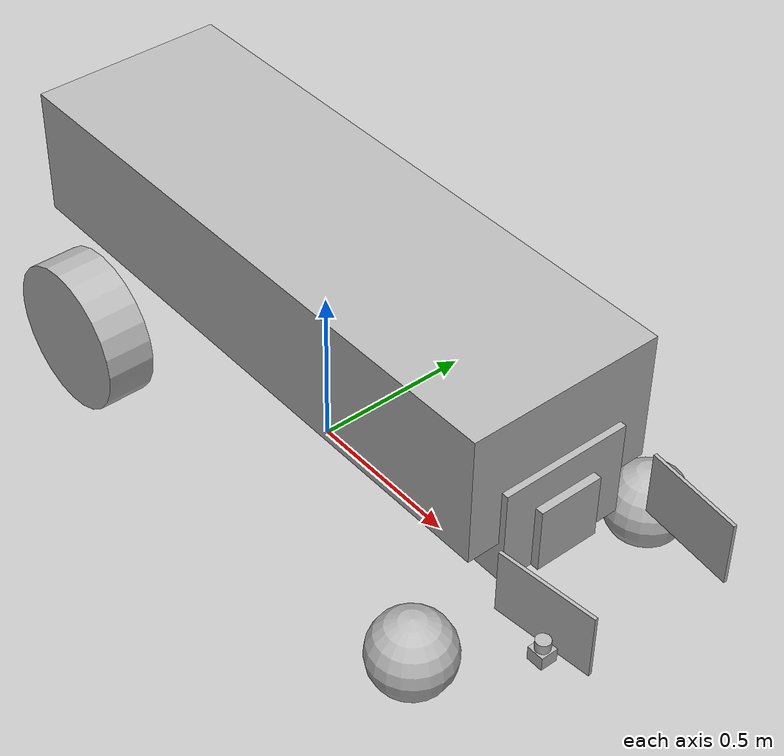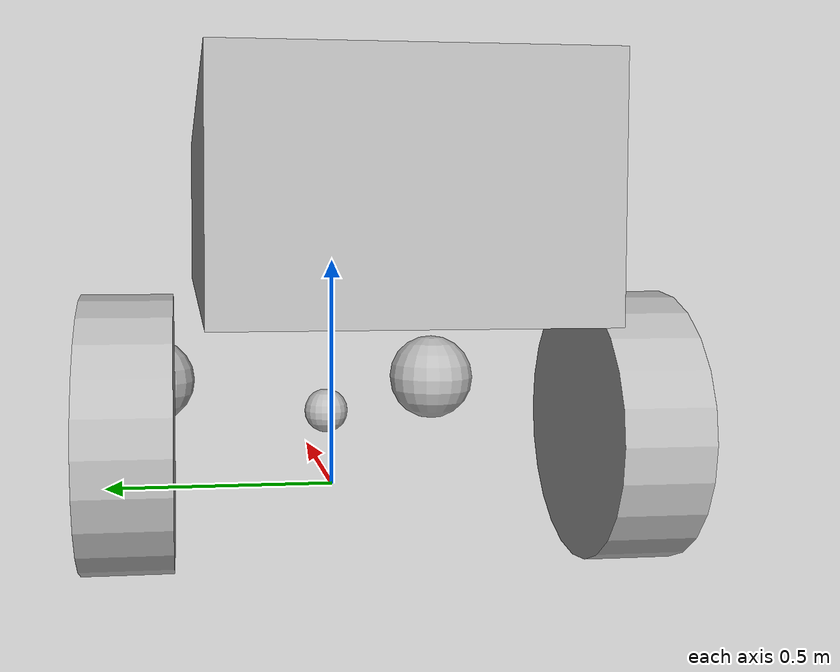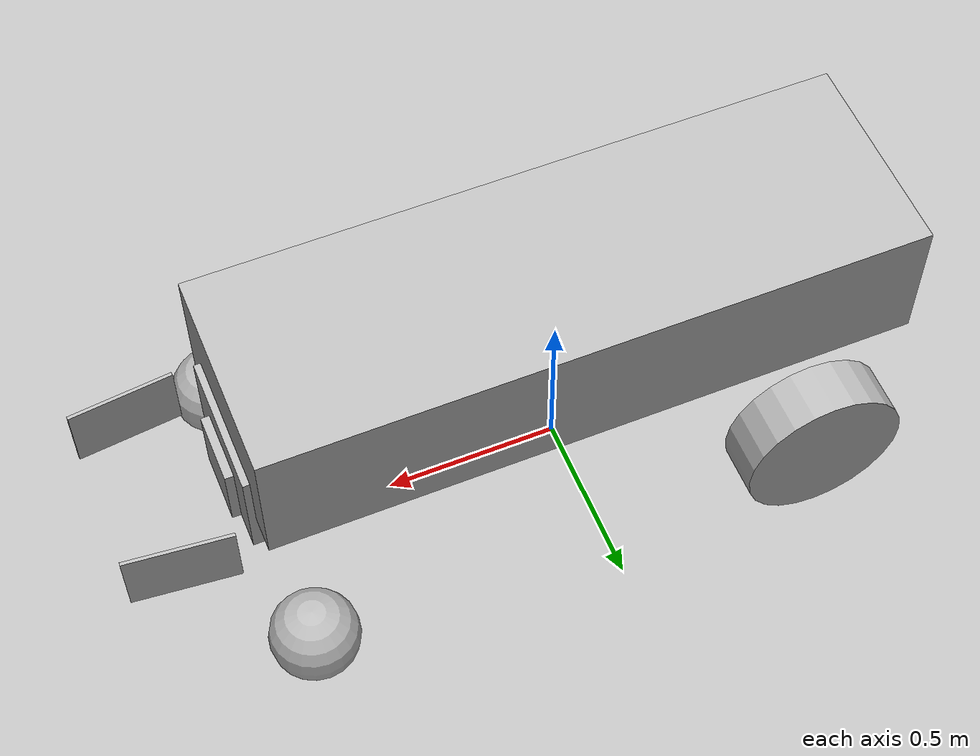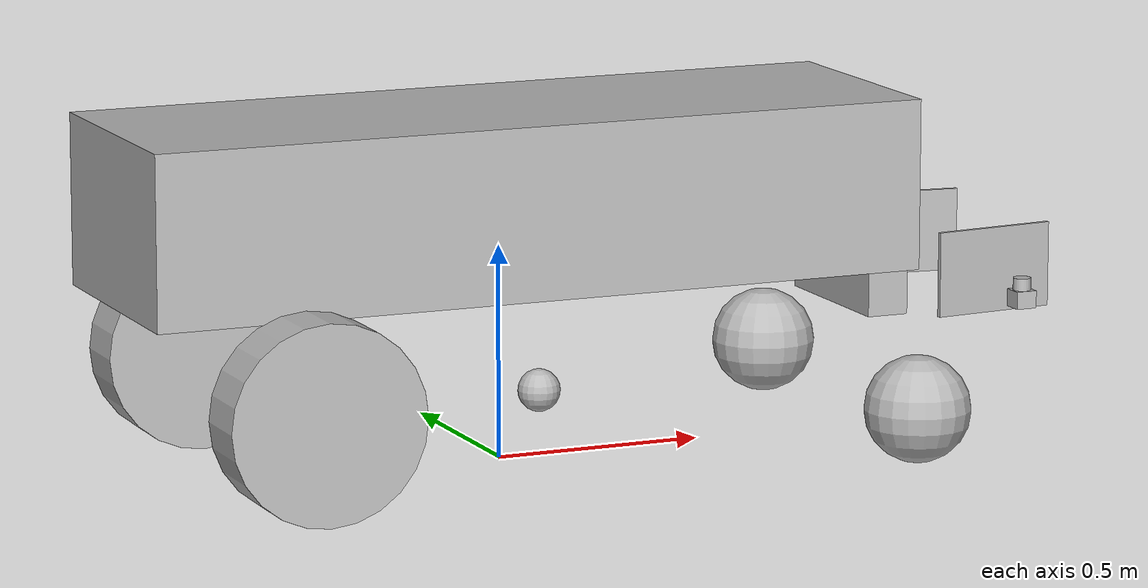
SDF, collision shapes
<?xml version="1.0" ?>

<sdf version="1.4">

	<model name="my_robot">

		<link name="chassis">
			<pose>0 0 0.625 0 0 0</pose>

			<inertial>
				<mass value="262.61"/>
				<inertia ixx="81.0" ixy="0.0" ixz="0.0" iyy="81.0" iyz="0.0" izz="113.0"/>
			</inertial>

			<collision name="collision">
				<geometry>
					<box>
						<size>1.86 0.6 0.4</size>
					</box>
				</geometry>
			</collision>

			<visual name="visual">
				<geometry>
					<box>
						<size>1.86 0.6 0.4</size>
					</box>
				</geometry>
			</visual>

			<!-- casters -->

			<collision name="first_caster_collision">
				<pose>0.87 0.42 -0.5 0 0 0</pose>

				<geometry>
					<sphere>
						<radius>.125</radius>
					</sphere>
				</geometry>

				<surface>
					<friction>
						<ode>
							<mu>0</mu>
							<mu2>0</mu2>
							<slip1>1.0</slip1>
							<slip2>1.0</slip2>
						</ode>
					</friction>
				</surface>
			</collision>

			<visual name="first_caster_visual">
				<pose>0.87 0.42 -0.5 0 0 0</pose>
				<geometry>
					<sphere>
						<radius>.125</radius>
					</sphere>
				</geometry>
			</visual>

			<collision name="second_caster_collision">
				<pose>0.87 -0.42 -0.5 0 0 0</pose>

				<geometry>
					<sphere>
						<radius>.125</radius>
					</sphere>
				</geometry>

				<surface>
					<friction>
						<ode>
							<mu>0</mu>
							<mu2>0</mu2>
							<slip1>1.0</slip1>
							<slip2>1.0</slip2>
						</ode>
					</friction>
				</surface>
			</collision>

			<visual name="second_caster_visual">
				<pose>0.87 -0.42 -0.5 0 0 0</pose>
				<geometry>
					<sphere>
						<radius>.125</radius>
					</sphere>
				</geometry>
			</visual>
		</link>

		<!-- wheels -->

		<link name="left_wheel">
			<pose>-0.6 0.42 0.23 0 1.5707 1.5707</pose>

			<collision name="collision">
				<geometry>
					<cylinder>
						<radius>.23</radius>
						<length>.15</length>
					</cylinder>
				</geometry>
			</collision>

			<visual name="visual">
				<geometry>
					<cylinder>
						<radius>.23</radius>
						<length>.15</length>
					</cylinder>
				</geometry>
			</visual>

			<inertial>
				<mass value="15"/>
				<inertia ixx="1.0" ixy="0.0" ixz="0.0" iyy="1.0" iyz="0.0" izz="1.0"/>
			</inertial>
		</link>

		<link name="right_wheel">
			<pose>-0.6 -0.42 0.23 0 1.5707 1.5707</pose>

			<collision name="collision">
				<geometry>
					<cylinder>
						<radius>.23</radius>
						<length>.15</length>
					</cylinder>
				</geometry>
			</collision>

			<visual name="visual">
				<geometry>
					<cylinder>
						<radius>.23</radius>
						<length>.15</length>
					</cylinder>
				</geometry>
			</visual>

			<inertial>
				<mass value="15"/>
				<inertia ixx="1.0" ixy="0.0" ixz="0.0" iyy="1.0" iyz="0.0" izz="1.0"/>
			</inertial>
		</link>

		<!-- keel -->

		<link name="keel">
			<pose>0.1 0 0.15 0 0 0</pose>

			<collision name="collision">
				<geometry>
					<sphere>
						<radius>0.05</radius>
					</sphere>
				</geometry>
			</collision>

			<visual name="visual">
				<geometry>
					<sphere>
						<radius>0.05</radius>
					</sphere>
				</geometry>
			</visual>

			<inertial>
				<mass value="100"/>
				<inertia ixx="1.0" ixy="0.0" ixz="0.0" iyy="1.0" iyz="0.0" izz="1.0"/>
			</inertial>
		</link>

		<!-- claw -->

		<link name="claw_base">
			<pose>0.9 0 0.45 0 0 0</pose>

			<collision name="collision">
				<geometry>
					<box>
						<size>0.1 0.4 0.3</size>
					</box>
				</geometry>
			</collision>

			<visual name="visual">
				<geometry>
					<box>
						<size>0.1 0.4 0.3</size>
					</box>
				</geometry>
			</visual>

			<inertial>
				<mass value="10"/>
				<inertia ixx="1.0" ixy="0.0" ixz="0.0" iyy="1.0" iyz="0.0" izz="1.0"/>
			</inertial>
		</link>

		<link name="claw_palm">
			<pose>0.95 0 0.4 0 0 0</pose>

			<collision name="collision">
				<geometry>
					<box>
						<size>0.05 0.2 0.2</size>
					</box>
				</geometry>
			</collision>

			<visual name="visual">
				<geometry>
					<box>
						<size>0.05 0.2 0.2</size>
					</box>
				</geometry>
			</visual>

			<inertial>
				<mass value="1"/>
				<inertia ixx="1.0" ixy="0.0" ixz="0.0" iyy="1.0" iyz="0.0" izz="1.0"/>
			</inertial>
		</link>

		<link name="claw_left">
			<pose>1.15 0.25 0.4 0 0 -0.1</pose>

			<collision name="collision">
				<geometry>
					<box>
						<size>0.3 0.01 0.2</size>
					</box>
				</geometry>
			</collision>

			<visual name="visual">
				<geometry>
					<box>
						<size>0.3 0.01 0.2</size>
					</box>
				</geometry>
			</visual>

			<inertial>
				<mass value="1"/>
				<inertia ixx="1.0" ixy="0.0" ixz="0.0" iyy="1.0" iyz="0.0" izz="1.0"/>
			</inertial>
		</link>

		<link name="claw_right">
			<pose>1.15 -0.25 0.4 0 0 0.1</pose>

			<collision name="collision">
				<geometry>
					<box>
						<size>0.3 0.01 0.2</size>
					</box>
				</geometry>
			</collision>

			<visual name="visual">
				<geometry>
					<box>
						<size>0.3 0.01 0.2</size>
					</box>
				</geometry>
			</visual>

			<inertial>
				<mass value="1"/>
				<inertia ixx="1.0" ixy="0.0" ixz="0.0" iyy="1.0" iyz="0.0" izz="1.0"/>
			</inertial>
		</link>

		<!-- claw joints -->

		<joint type="revolute" name="claw_chassis_mount">
			<child>claw_base</child>s
			<parent>chassis</parent>
			<axis>
				<xyz>0 1 0</xyz>
				<limit>
					<upper>0</upper>
					<lower>0</lower>
				</limit>
			</axis>
		</joint>

		<joint type="prismatic" name="claw_palm_mount">
			<child>claw_palm</child>
			<parent>claw_base</parent>
			<axis>
				<xyz>0 0 1</xyz>
				<limit>
					<upper>0.5</upper>
					<lower>0</lower>
				</limit>
				<dynamics>
					<damping>1</damping>
					<friction>1</friction>
				</dynamics>
			</axis>
		</joint>

		<joint type="prismatic" name="right_claw_mount">
			<child>claw_right</child>
			<parent>claw_palm</parent>
			<axis>
				<xyz>0 1 0</xyz>
				<limit>
					<upper>0.2</upper>
					<lower>0</lower>
				</limit>
				<dynamics>
					<damping>1</damping>
					<friction>0.5</friction>
				</dynamics>
			</axis>
		</joint>

		<joint type="prismatic" name="left_claw_mount">
			<child>claw_left</child>
			<parent>claw_palm</parent>
			<axis>
				<xyz>0 -1 0</xyz>
				<limit>
					<upper>0.2</upper>
					<lower>0</lower>
				</limit>
				<dynamics>
					<damping>1</damping>
					<friction>0.5</friction>
				</dynamics>
			</axis>
		</joint>

		<!-- wheel joints -->

		<joint type="revolute" name="left_wheel_hinge">
			<pose>0 0 -0.03 0 0 0</pose>
			<child>left_wheel</child>
			<parent>chassis</parent>
			<axis>
				<xyz>0 1 0</xyz>
				<dynamics>
					<damping>0.1</damping>
					<friction>0.1</friction>
				</dynamics>
			</axis>
		</joint>

		<joint type="revolute" name="right_wheel_hinge">
			<pose>0 0 0.03 0 0 0</pose>
			<child>right_wheel</child>
			<parent>chassis</parent>
			<axis>
				<xyz>0 1 0</xyz>
				<dynamics>
					<damping>0.1</damping>
					<friction>0.1</friction>
				</dynamics>
			</axis>
		</joint>

		<!-- keel -->

		<joint type="revolute" name="keel_joint">
			<child>keel</child>
			<parent>chassis</parent>
			<axis>
				<xyz>0 1 0</xyz>
				<limit>
					<upper>0</upper>
					<lower>0</lower>
				</limit>
				<dynamics>
					<damping>1</damping>
					<friction>1</friction>
				</dynamics>
			</axis>
		</joint>

		<!-- lidar -->

		<include>
			<uri>model://hokuyo_urg_04lx_ug01</uri>
			<pose>1.2 -0.3 0.35 0 0 0</pose>
		</include>

		<joint name="hokuyo_joint" type="revolute">
			<child>hokuyo_urg_04lx_ug01::link</child>
			<parent>chassis</parent>
			<pose>0 0 0 0 0.2 0</pose>
			<axis>
				<xyz>0 1 0</xyz>
				<limit>
					<upper>0.7854</upper>
					<lower>-0.00001</lower>
				</limit>
				<dynamics>
					<damping>0.1</damping>
					<friction>0.5</friction>
				</dynamics>
			</axis>
		</joint>

		<!-- ROS plugin -->

		<plugin filename="libgaia_gazebo_plugin.so" name="gaia_gazebo_plugin">
			<frame_id>gaia</frame_id>
			<left_wheel_hinge>left_wheel_hinge</left_wheel_hinge>
			<right_wheel_hinge>right_wheel_hinge</right_wheel_hinge>
			<gain>0.1</gain>
			<ray_sensor>laser</ray_sensor>
			<lidar_gaussian_noise>0.01</lidar_gaussian_noise>
		</plugin>

	</model>
</sdf>

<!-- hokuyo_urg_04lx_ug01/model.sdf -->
<sdf version="1.4">
  <model name="hokuyo_urg_04lx_ug01">
    <pose>0 0 0.035 0 0 0</pose>
    <link name="link">
      <inertial>
        <mass>0.1</mass>
      </inertial>
      <visual name="visual">
        <geometry>
          <mesh>
            <uri>model://hokuyo/meshes/hokuyo.dae</uri>
          </mesh>
        </geometry>
      </visual>

      <collision name="collision-base">
        <pose>0 0 -0.0145 0 0 0</pose>
        <geometry>
          <box>
            <size>0.05 0.05 0.041</size>
          </box>
        </geometry>
      </collision>

      <collision name="collision-top">
        <pose>0 0 0.0205 0 0 0</pose>
        <geometry>
          <cylinder>
            <radius>0.021</radius>
            <length>0.029</length>
          </cylinder>
        </geometry>
      </collision>

      <sensor name="laser" type="ray">
        <pose>0.01 0 0.0175 0 -0 0</pose>
        <ray>
          <scan>
            <horizontal>
              <samples>640</samples>
              <resolution>1</resolution>
              <min_angle>-2.0943951</min_angle>
              <max_angle>2.0943951</max_angle>
            </horizontal>
          </scan>
          <range>
            <min>0.03</min>
            <max>10</max>
            <resolution>0.001</resolution>
          </range>
        </ray>

        <plugin name="laser" filename="libRayPlugin.so" />
        <always_on>1</always_on>
        <update_rate>10</update_rate>
        <visualize>true</visualize>
      </sensor>
    </link>
  </model>
</sdf>
